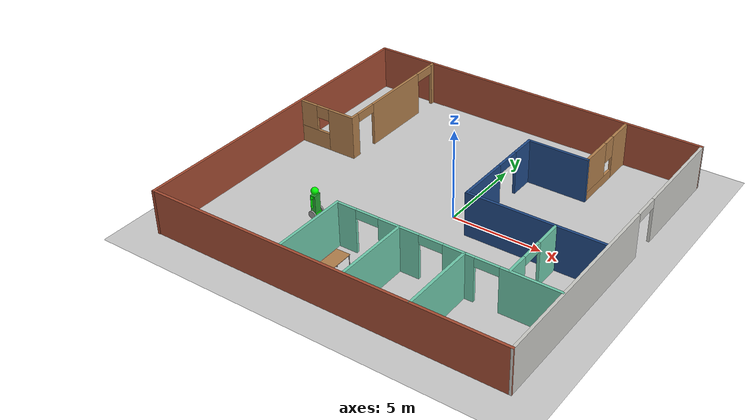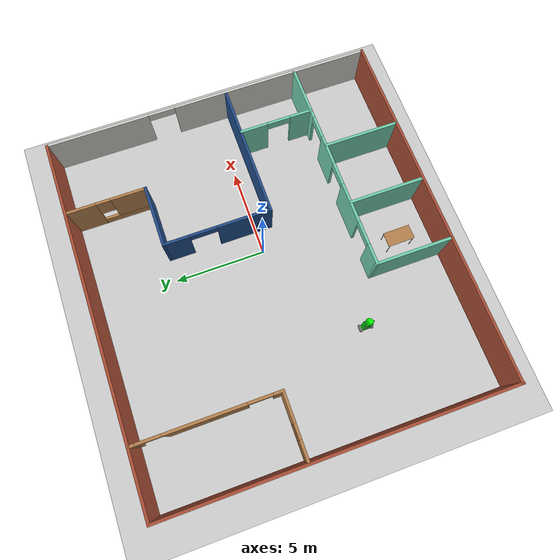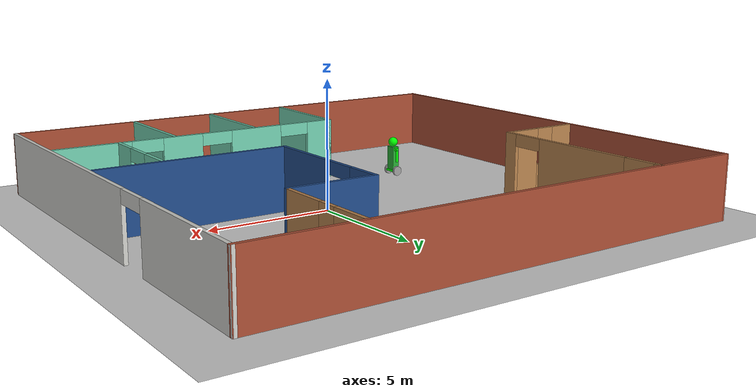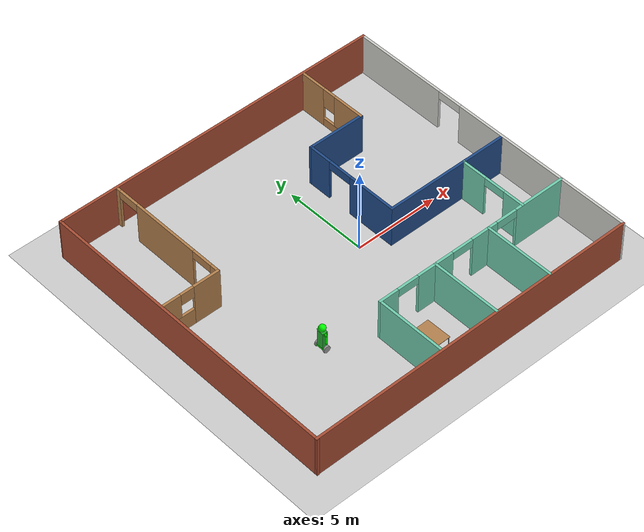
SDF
<sdf version="1.6">
 <world name="default">
  <model name="ground_plane">
   <static>1</static>
   <link name="link">
    <collision name="collision">
     <geometry><plane><normal>0 0 1</normal><size>100 100</size></plane></geometry>
     <surface>
      <contact><collide_bitmask>65535</collide_bitmask></contact>
      <friction><ode><mu>100</mu><mu2>50</mu2></ode></friction>
     </surface>
    </collision>
    <visual name="visual">
     <cast_shadows>0</cast_shadows>
     <geometry><plane><normal>0 0 1</normal><size>100 100</size></plane></geometry>
     <material>
      <script><uri>file://media/materials/scripts/gazebo.material</uri><name>Gazebo/Grey</name></script>
     </material>
    </visual>
   </link>
  </model>
  <model name="office">
   <pose>-1.09853 0.0618 0 0 -0 0</pose>
   <link name="Wall_100">
    <pose>3.87328 -5.05004 0 0 -0 0</pose>
    <visual name="Wall_100_Visual_0">
     <pose>-5.5246 0 1.25 0 -0 0</pose>
     <geometry><box><size>1.2008 0.15 2.5</size></box></geometry>
     <material>
      <script><uri>file://media/materials/scripts/gazebo.material</uri><name>Gazebo/Grey</name></script>
      <ambient>0.435294 0.796078 0.67451 1</ambient>
     </material>
     <meta><layer>0</layer></meta>
    </visual>
    <collision name="Wall_100_Collision_0">
     <geometry><box><size>1.2008 0.15 2.5</size></box></geometry>
     <pose>-5.5246 0 1.25 0 -0 0</pose>
    </collision>
    <visual name="Wall_100_Visual_1">
     <pose>-2.48178 0 1.25 0 -0 0</pose>
     <geometry><box><size>2.28483 0.15 2.5</size></box></geometry>
     <material>
      <script><uri>file://media/materials/scripts/gazebo.material</uri><name>Gazebo/Grey</name></script>
      <ambient>0.435294 0.796078 0.67451 1</ambient>
     </material>
     <meta><layer>0</layer></meta>
    </visual>
    <collision name="Wall_100_Collision_1">
     <geometry><box><size>2.28483 0.15 2.5</size></box></geometry>
     <pose>-2.48178 0 1.25 0 -0 0</pose>
    </collision>
    <visual name="Wall_100_Visual_2">
     <pose>0.798914 0 1.25 0 -0 0</pose>
     <geometry><box><size>1.67657 0.15 2.5</size></box></geometry>
     <material>
      <script><uri>file://media/materials/scripts/gazebo.material</uri><name>Gazebo/Grey</name></script>
      <ambient>0.435294 0.796078 0.67451 1</ambient>
     </material>
     <meta><layer>0</layer></meta>
    </visual>
    <collision name="Wall_100_Collision_2">
     <geometry><box><size>1.67657 0.15 2.5</size></box></geometry>
     <pose>0.798914 0 1.25 0 -0 0</pose>
    </collision>
    <visual name="Wall_100_Visual_3">
     <pose>4.5311 0 1.25 0 -0 0</pose>
     <geometry><box><size>3.1878 0.15 2.5</size></box></geometry>
     <material>
      <script><uri>file://media/materials/scripts/gazebo.material</uri><name>Gazebo/Grey</name></script>
      <ambient>0.435294 0.796078 0.67451 1</ambient>
     </material>
     <meta><layer>0</layer></meta>
    </visual>
    <collision name="Wall_100_Collision_3">
     <geometry><box><size>3.1878 0.15 2.5</size></box></geometry>
     <pose>4.5311 0 1.25 0 -0 0</pose>
    </collision>
    <visual name="Wall_100_Visual_4">
     <pose>-4.2742 0 2.25 0 -0 0</pose>
     <geometry><box><size>1.3 0.15 0.5</size></box></geometry>
     <material>
      <script><uri>file://media/materials/scripts/gazebo.material</uri><name>Gazebo/Grey</name></script>
      <ambient>0.435294 0.796078 0.67451 1</ambient>
     </material>
     <meta><layer>0</layer></meta>
    </visual>
    <collision name="Wall_100_Collision_4">
     <geometry><box><size>1.3 0.15 0.5</size></box></geometry>
     <pose>-4.2742 0 2.25 0 -0 0</pose>
    </collision>
    <visual name="Wall_100_Visual_5">
     <pose>-0.689371 0 2.25 0 -0 0</pose>
     <geometry><box><size>1.3 0.15 0.5</size></box></geometry>
     <material>
      <script><uri>file://media/materials/scripts/gazebo.material</uri><name>Gazebo/Grey</name></script>
      <ambient>0.435294 0.796078 0.67451 1</ambient>
     </material>
     <meta><layer>0</layer></meta>
    </visual>
    <collision name="Wall_100_Collision_5">
     <geometry><box><size>1.3 0.15 0.5</size></box></geometry>
     <pose>-0.689371 0 2.25 0 -0 0</pose>
    </collision>
    <visual name="Wall_100_Visual_6">
     <pose>2.2872 0 2.25 0 -0 0</pose>
     <geometry><box><size>1.3 0.15 0.5</size></box></geometry>
     <material>
      <script><uri>file://media/materials/scripts/gazebo.material</uri><name>Gazebo/Grey</name></script>
      <ambient>0.435294 0.796078 0.67451 1</ambient>
     </material>
     <meta><layer>0</layer></meta>
    </visual>
    <collision name="Wall_100_Collision_6">
     <geometry><box><size>1.3 0.15 0.5</size></box></geometry>
     <pose>2.2872 0 2.25 0 -0 0</pose>
    </collision>
   </link>
   <link name="Wall_102">
    <collision name="Wall_102_Collision">
     <geometry><box><size>20.1151 0.15 2.5</size></box></geometry>
     <pose>0 0 1.25 0 -0 0</pose>
    </collision>
    <visual name="Wall_102_Visual">
     <pose>0 0 1.25 0 -0 0</pose>
     <geometry><box><size>20.1151 0.15 2.5</size></box></geometry>
     <material>
      <script><uri>file://media/materials/scripts/gazebo.material</uri><name>Gazebo/Bricks</name></script>
      <ambient>1 1 1 1</ambient>
     </material>
     <meta><layer>0</layer></meta>
    </visual>
    <pose>0.012485 9.2376 0 0 -0 0.003515</pose>
   </link>
   <link name="Wall_31">
    <collision name="Wall_31_Collision">
     <geometry><box><size>20.1151 0.15 2.5</size></box></geometry>
     <pose>0 0 1.25 0 -0 0</pose>
    </collision>
    <visual name="Wall_31_Visual">
     <pose>0 0 1.25 0 -0 0</pose>
     <geometry><box><size>20.1151 0.15 2.5</size></box></geometry>
     <material>
      <script><uri>file://media/materials/scripts/gazebo.material</uri><name>Gazebo/Bricks</name></script>
      <ambient>1 1 1 1</ambient>
     </material>
     <meta><layer>0</layer></meta>
    </visual>
    <pose>-0.012543 -9.22507 0 0 -0 0.00228</pose>
   </link>
   <link name="Wall_32">
    <pose>9.9825 0.035189 0 0 -0 1.56944</pose>
    <visual name="Wall_32_Visual_0">
     <pose>-3.6506 0 1.25 0 -0 0</pose>
     <geometry><box><size>11.3242 0.15 2.5</size></box></geometry>
     <material>
      <script><uri>file://media/materials/scripts/gazebo.material</uri><name>Gazebo/CeilingTiled</name></script>
      <ambient>1 1 1 1</ambient>
     </material>
     <meta><layer>0</layer></meta>
    </visual>
    <collision name="Wall_32_Collision_0">
     <geometry><box><size>11.3242 0.15 2.5</size></box></geometry>
     <pose>-3.6506 0 1.25 0 -0 0</pose>
    </collision>
    <visual name="Wall_32_Visual_1">
     <pose>6.41211 0 1.25 0 -0 0</pose>
     <geometry><box><size>5.8012 0.15 2.5</size></box></geometry>
     <material>
      <script><uri>file://media/materials/scripts/gazebo.material</uri><name>Gazebo/CeilingTiled</name></script>
      <ambient>1 1 1 1</ambient>
     </material>
     <meta><layer>0</layer></meta>
    </visual>
    <collision name="Wall_32_Collision_1">
     <geometry><box><size>5.8012 0.15 2.5</size></box></geometry>
     <pose>6.41211 0 1.25 0 -0 0</pose>
    </collision>
    <visual name="Wall_32_Visual_2">
     <pose>2.76151 0 2.25 0 -0 0</pose>
     <geometry><box><size>1.5 0.15 0.5</size></box></geometry>
     <material>
      <script><uri>file://media/materials/scripts/gazebo.material</uri><name>Gazebo/CeilingTiled</name></script>
      <ambient>1 1 1 1</ambient>
     </material>
     <meta><layer>0</layer></meta>
    </visual>
    <collision name="Wall_32_Collision_2">
     <geometry><box><size>1.5 0.15 0.5</size></box></geometry>
     <pose>2.76151 0 2.25 0 -0 0</pose>
    </collision>
   </link>
   <link name="Wall_34">
    <pose>5.77997 7.07751 0 0 -0 -1.5708</pose>
    <visual name="Wall_34_Visual_0">
     <pose>-1.39732 0 1.25 0 -0 0</pose>
     <geometry><box><size>1.70536 0.15 2.5</size></box></geometry>
     <material>
      <script><uri>file://media/materials/scripts/gazebo.material</uri><name>Gazebo/Wood</name></script>
      <ambient>0.12549 0.290196 0.529412 1</ambient>
     </material>
     <meta><layer>0</layer></meta>
    </visual>
    <collision name="Wall_34_Collision_0">
     <geometry><box><size>1.70536 0.15 2.5</size></box></geometry>
     <pose>-1.39732 0 1.25 0 -0 0</pose>
    </collision>
    <visual name="Wall_34_Visual_1">
     <pose>0.852681 0 0.25 0 -0 0</pose>
     <geometry><box><size>2.79464 0.15 0.5</size></box></geometry>
     <material>
      <script><uri>file://media/materials/scripts/gazebo.material</uri><name>Gazebo/Wood</name></script>
      <ambient>0.12549 0.290196 0.529412 1</ambient>
     </material>
     <meta><layer>0</layer></meta>
    </visual>
    <collision name="Wall_34_Collision_1">
     <geometry><box><size>2.79464 0.15 0.5</size></box></geometry>
     <pose>0.852681 0 0.25 0 -0 0</pose>
    </collision>
    <visual name="Wall_34_Visual_2">
     <pose>1.25268 0 1.5 0 -0 0</pose>
     <geometry><box><size>1.99464 0.15 2</size></box></geometry>
     <material>
      <script><uri>file://media/materials/scripts/gazebo.material</uri><name>Gazebo/Wood</name></script>
      <ambient>0.12549 0.290196 0.529412 1</ambient>
     </material>
     <meta><layer>0</layer></meta>
    </visual>
    <collision name="Wall_34_Collision_2">
     <geometry><box><size>1.99464 0.15 2</size></box></geometry>
     <pose>1.25268 0 1.5 0 -0 0</pose>
    </collision>
    <visual name="Wall_34_Visual_3">
     <pose>-0.144637 0 1.9 0 -0 0</pose>
     <geometry><box><size>0.8 0.15 1.2</size></box></geometry>
     <material>
      <script><uri>file://media/materials/scripts/gazebo.material</uri><name>Gazebo/Wood</name></script>
      <ambient>0.12549 0.290196 0.529412 1</ambient>
     </material>
     <meta><layer>0</layer></meta>
    </visual>
    <collision name="Wall_34_Collision_3">
     <geometry><box><size>0.8 0.15 1.2</size></box></geometry>
     <pose>-0.144637 0 1.9 0 -0 0</pose>
    </collision>
   </link>
   <link name="Wall_35">
    <collision name="Wall_35_Collision">
     <geometry><box><size>3.5 0.15 2.5</size></box></geometry>
     <pose>0 0 1.25 0 -0 0</pose>
    </collision>
    <visual name="Wall_35_Visual">
     <pose>0 0 1.25 0 -0 0</pose>
     <geometry><box><size>3.5 0.15 2.5</size></box></geometry>
     <material>
      <script><uri>file://media/materials/scripts/gazebo.material</uri><name>Gazebo/Grey</name></script>
      <ambient>0.12549 0.290196 0.529412 1</ambient>
     </material>
     <meta><layer>0</layer></meta>
    </visual>
    <pose>4.10497 4.90251 0 0 -0 3.14159</pose>
   </link>
   <link name="Wall_40">
    <pose>2.42997 1.97751 0 0 -0 -1.5708</pose>
    <visual name="Wall_40_Visual_0">
     <pose>-2.25699 0 1.25 0 -0 0</pose>
     <geometry><box><size>1.48601 0.15 2.5</size></box></geometry>
     <material>
      <script><uri>file://media/materials/scripts/gazebo.material</uri><name>Gazebo/Grey</name></script>
      <ambient>0.12549 0.290196 0.529412 1</ambient>
     </material>
     <meta><layer>0</layer></meta>
    </visual>
    <collision name="Wall_40_Collision_0">
     <geometry><box><size>1.48601 0.15 2.5</size></box></geometry>
     <pose>-2.25699 0 1.25 0 -0 0</pose>
    </collision>
    <visual name="Wall_40_Visual_1">
     <pose>1.493 0 1.25 0 -0 0</pose>
     <geometry><box><size>3.01399 0.15 2.5</size></box></geometry>
     <material>
      <script><uri>file://media/materials/scripts/gazebo.material</uri><name>Gazebo/Grey</name></script>
      <ambient>0.12549 0.290196 0.529412 1</ambient>
     </material>
     <meta><layer>0</layer></meta>
    </visual>
    <collision name="Wall_40_Collision_1">
     <geometry><box><size>3.01399 0.15 2.5</size></box></geometry>
     <pose>1.493 0 1.25 0 -0 0</pose>
    </collision>
    <visual name="Wall_40_Visual_2">
     <pose>-0.76399 0 2.25 0 -0 0</pose>
     <geometry><box><size>1.5 0.15 0.5</size></box></geometry>
     <material>
      <script><uri>file://media/materials/scripts/gazebo.material</uri><name>Gazebo/Grey</name></script>
      <ambient>0.12549 0.290196 0.529412 1</ambient>
     </material>
     <meta><layer>0</layer></meta>
    </visual>
    <collision name="Wall_40_Collision_2">
     <geometry><box><size>1.5 0.15 0.5</size></box></geometry>
     <pose>-0.76399 0 2.25 0 -0 0</pose>
    </collision>
   </link>
   <link name="Wall_43">
    <collision name="Wall_43_Collision">
     <geometry><box><size>18.6254 0.15 2.5</size></box></geometry>
     <pose>0 0 1.25 0 -0 0</pose>
    </collision>
    <visual name="Wall_43_Visual">
     <pose>0 0 1.25 0 -0 0</pose>
     <geometry><box><size>18.6254 0.15 2.5</size></box></geometry>
     <material>
      <script><uri>file://media/materials/scripts/gazebo.material</uri><name>Gazebo/Bricks</name></script>
      <ambient>1 1 1 1</ambient>
     </material>
     <meta><layer>0</layer></meta>
    </visual>
    <pose>-9.98256 -0.035189 0 0 -0 1.56944</pose>
   </link>
   <link name="Wall_58">
    <collision name="Wall_58_Collision">
     <geometry><box><size>7.55 0.15 2.5</size></box></geometry>
     <pose>0 0 1.25 0 -0 0</pose>
    </collision>
    <visual name="Wall_58_Visual">
     <pose>0 0 1.25 0 -0 0</pose>
     <geometry><box><size>7.55 0.15 2.5</size></box></geometry>
     <material>
      <script><uri>file://media/materials/scripts/gazebo.material</uri><name>Gazebo/Grey</name></script>
      <ambient>0.12549 0.290196 0.529412 1</ambient>
     </material>
     <meta><layer>0</layer></meta>
    </visual>
    <pose>6.12997 -0.947492 0 0 -0 0</pose>
   </link>
   <link name="Wall_83">
    <pose>-6.499 5.40169 0 0 -0 -1.5708</pose>
    <visual name="Wall_83_Visual_0">
     <pose>-3.68643 0 1.25 0 -0 0</pose>
     <geometry><box><size>0.377131 0.15 2.5</size></box></geometry>
     <material>
      <script><uri>file://media/materials/scripts/gazebo.material</uri><name>Gazebo/Wood</name></script>
      <ambient>0.996078 0.47451 0.0196078 1</ambient>
     </material>
     <meta><layer>0</layer></meta>
    </visual>
    <collision name="Wall_83_Collision_0">
     <geometry><box><size>0.377131 0.15 2.5</size></box></geometry>
     <pose>-3.68643 0 1.25 0 -0 0</pose>
    </collision>
    <visual name="Wall_83_Visual_1">
     <pose>-0.095603 0 1.25 0 -0 0</pose>
     <geometry><box><size>4.20453 0.15 2.5</size></box></geometry>
     <material>
      <script><uri>file://media/materials/scripts/gazebo.material</uri><name>Gazebo/Wood</name></script>
      <ambient>0.996078 0.47451 0.0196078 1</ambient>
     </material>
     <meta><layer>0</layer></meta>
    </visual>
    <collision name="Wall_83_Collision_1">
     <geometry><box><size>4.20453 0.15 2.5</size></box></geometry>
     <pose>-0.095603 0 1.25 0 -0 0</pose>
    </collision>
    <visual name="Wall_83_Visual_2">
     <pose>3.59083 0 1.25 0 -0 0</pose>
     <geometry><box><size>0.568336 0.15 2.5</size></box></geometry>
     <material>
      <script><uri>file://media/materials/scripts/gazebo.material</uri><name>Gazebo/Wood</name></script>
      <ambient>0.996078 0.47451 0.0196078 1</ambient>
     </material>
     <meta><layer>0</layer></meta>
    </visual>
    <collision name="Wall_83_Collision_2">
     <geometry><box><size>0.568336 0.15 2.5</size></box></geometry>
     <pose>3.59083 0 1.25 0 -0 0</pose>
    </collision>
    <visual name="Wall_83_Visual_3">
     <pose>-2.84787 0 2.25 0 -0 0</pose>
     <geometry><box><size>1.3 0.15 0.5</size></box></geometry>
     <material>
      <script><uri>file://media/materials/scripts/gazebo.material</uri><name>Gazebo/Wood</name></script>
      <ambient>0.996078 0.47451 0.0196078 1</ambient>
     </material>
     <meta><layer>0</layer></meta>
    </visual>
    <collision name="Wall_83_Collision_3">
     <geometry><box><size>1.3 0.15 0.5</size></box></geometry>
     <pose>-2.84787 0 2.25 0 -0 0</pose>
    </collision>
    <visual name="Wall_83_Visual_4">
     <pose>2.65666 0 2.25 0 -0 0</pose>
     <geometry><box><size>1.3 0.15 0.5</size></box></geometry>
     <material>
      <script><uri>file://media/materials/scripts/gazebo.material</uri><name>Gazebo/Wood</name></script>
      <ambient>0.996078 0.47451 0.0196078 1</ambient>
     </material>
     <meta><layer>0</layer></meta>
    </visual>
    <collision name="Wall_83_Collision_4">
     <geometry><box><size>1.3 0.15 0.5</size></box></geometry>
     <pose>2.65666 0 2.25 0 -0 0</pose>
    </collision>
   </link>
   <link name="Wall_84">
    <pose>-8.17411 1.60163 0 0 -0 -3.14156</pose>
    <visual name="Wall_84_Visual_0">
     <pose>-0.938412 0 1.25 0 -0 0</pose>
     <geometry><box><size>1.62318 0.15 2.5</size></box></geometry>
     <material>
      <script><uri>file://media/materials/scripts/gazebo.material</uri><name>Gazebo/Wood</name></script>
      <ambient>0.996078 0.47451 0.0196078 1</ambient>
     </material>
     <meta><layer>0</layer></meta>
    </visual>
    <collision name="Wall_84_Collision_0">
     <geometry><box><size>1.62318 0.15 2.5</size></box></geometry>
     <pose>-0.938412 0 1.25 0 -0 0</pose>
    </collision>
    <visual name="Wall_84_Visual_1">
     <pose>0.811588 0 0.5 0 -0 0</pose>
     <geometry><box><size>1.87682 0.15 1</size></box></geometry>
     <material>
      <script><uri>file://media/materials/scripts/gazebo.material</uri><name>Gazebo/Wood</name></script>
      <ambient>0.996078 0.47451 0.0196078 1</ambient>
     </material>
     <meta><layer>0</layer></meta>
    </visual>
    <collision name="Wall_84_Collision_1">
     <geometry><box><size>1.87682 0.15 1</size></box></geometry>
     <pose>0.811588 0 0.5 0 -0 0</pose>
    </collision>
    <visual name="Wall_84_Visual_2">
     <pose>1.21159 0 1.75 0 -0 0</pose>
     <geometry><box><size>1.07682 0.15 1.5</size></box></geometry>
     <material>
      <script><uri>file://media/materials/scripts/gazebo.material</uri><name>Gazebo/Wood</name></script>
      <ambient>0.996078 0.47451 0.0196078 1</ambient>
     </material>
     <meta><layer>0</layer></meta>
    </visual>
    <collision name="Wall_84_Collision_2">
     <geometry><box><size>1.07682 0.15 1.5</size></box></geometry>
     <pose>1.21159 0 1.75 0 -0 0</pose>
    </collision>
    <visual name="Wall_84_Visual_3">
     <pose>0.273176 0 2.15 0 -0 0</pose>
     <geometry><box><size>0.8 0.15 0.7</size></box></geometry>
     <material>
      <script><uri>file://media/materials/scripts/gazebo.material</uri><name>Gazebo/Wood</name></script>
      <ambient>0.996078 0.47451 0.0196078 1</ambient>
     </material>
     <meta><layer>0</layer></meta>
    </visual>
    <collision name="Wall_84_Collision_3">
     <geometry><box><size>0.8 0.15 0.7</size></box></geometry>
     <pose>0.273176 0 2.15 0 -0 0</pose>
    </collision>
   </link>
   <link name="Wall_87">
    <pose>7.28385 -3.02299 0 0 -0 -1.5708</pose>
    <visual name="Wall_87_Visual_0">
     <pose>-1.31272 0 1.25 0 -0 0</pose>
     <geometry><box><size>1.57456 0.15 2.5</size></box></geometry>
     <material>
      <script><uri>file://media/materials/scripts/gazebo.material</uri><name>Gazebo/Grey</name></script>
      <ambient>0.435294 0.796078 0.67451 1</ambient>
     </material>
     <meta><layer>0</layer></meta>
    </visual>
    <collision name="Wall_87_Collision_0">
     <geometry><box><size>1.57456 0.15 2.5</size></box></geometry>
     <pose>-1.31272 0 1.25 0 -0 0</pose>
    </collision>
    <visual name="Wall_87_Visual_1">
     <pose>1.43728 0 1.25 0 -0 0</pose>
     <geometry><box><size>1.32543 0.15 2.5</size></box></geometry>
     <material>
      <script><uri>file://media/materials/scripts/gazebo.material</uri><name>Gazebo/Grey</name></script>
      <ambient>0.435294 0.796078 0.67451 1</ambient>
     </material>
     <meta><layer>0</layer></meta>
    </visual>
    <collision name="Wall_87_Collision_1">
     <geometry><box><size>1.32543 0.15 2.5</size></box></geometry>
     <pose>1.43728 0 1.25 0 -0 0</pose>
    </collision>
    <visual name="Wall_87_Visual_2">
     <pose>0.124565 0 2.25 0 -0 0</pose>
     <geometry><box><size>1.3 0.15 0.5</size></box></geometry>
     <material>
      <script><uri>file://media/materials/scripts/gazebo.material</uri><name>Gazebo/Grey</name></script>
      <ambient>0.435294 0.796078 0.67451 1</ambient>
     </material>
     <meta><layer>0</layer></meta>
    </visual>
    <collision name="Wall_87_Collision_2">
     <geometry><box><size>1.3 0.15 0.5</size></box></geometry>
     <pose>0.124565 0 2.25 0 -0 0</pose>
    </collision>
   </link>
   <link name="Wall_89">
    <collision name="Wall_89_Collision">
     <geometry><box><size>4.25 0.15 2.5</size></box></geometry>
     <pose>0 0 1.25 0 -0 0</pose>
    </collision>
    <visual name="Wall_89_Visual">
     <pose>0 0 1.25 0 -0 0</pose>
     <geometry><box><size>4.25 0.15 2.5</size></box></geometry>
     <material>
      <script><uri>file://media/materials/scripts/gazebo.material</uri><name>Gazebo/Grey</name></script>
      <ambient>0.435294 0.796078 0.67451 1</ambient>
     </material>
     <meta><layer>0</layer></meta>
    </visual>
    <pose>4.96424 -7.13054 0 0 -0 -1.5708</pose>
   </link>
   <link name="Wall_91">
    <collision name="Wall_91_Collision">
     <geometry><box><size>4.25 0.15 2.5</size></box></geometry>
     <pose>0 0 1.25 0 -0 0</pose>
    </collision>
    <visual name="Wall_91_Visual">
     <pose>0 0 1.25 0 -0 0</pose>
     <geometry><box><size>4.25 0.15 2.5</size></box></geometry>
     <material>
      <script><uri>file://media/materials/scripts/gazebo.material</uri><name>Gazebo/Grey</name></script>
      <ambient>0.435294 0.796078 0.67451 1</ambient>
     </material>
     <meta><layer>0</layer></meta>
    </visual>
    <pose>1.40966 -7.1075 0 0 -0 -1.5708</pose>
   </link>
   <link name="Wall_93">
    <collision name="Wall_93_Collision">
     <geometry><box><size>4.25 0.15 2.5</size></box></geometry>
     <pose>0 0 1.25 0 -0 0</pose>
    </collision>
    <visual name="Wall_93_Visual">
     <pose>0 0 1.25 0 -0 0</pose>
     <geometry><box><size>4.25 0.15 2.5</size></box></geometry>
     <material>
      <script><uri>file://media/materials/scripts/gazebo.material</uri><name>Gazebo/Grey</name></script>
      <ambient>0.435294 0.796078 0.67451 1</ambient>
     </material>
     <meta><layer>0</layer></meta>
    </visual>
    <pose>-2.17672 -7.10004 0 0 -0 -1.5708</pose>
   </link>
   <static>1</static>
  </model>
  <model name="humanoid_robot_clone_0">
   <link name="link_0">
    <pose>0 0 -0.1375 0 -0 0</pose>
    <inertial>
     <mass>10</mass>
     <inertia>
      <ixx>0.216667</ixx>
      <ixy>0</ixy>
      <ixz>0</ixz>
      <iyy>0.0833333</iyy>
      <iyz>0</iyz>
      <izz>0.283333</izz>
     </inertia>
    </inertial>
    <visual name="visual">
     <geometry><box><size>0.3 0.5 0.1</size></box></geometry>
     <material>
      <lighting>1</lighting>
      <script><uri>file://media/materials/scripts/gazebo.material</uri><name>Gazebo/Grey</name></script>
      <shader type="pixel"><normal_map>__default__</normal_map></shader>
      <ambient>0 1 0 1</ambient>
      <diffuse>0.7 0.7 0.7 1</diffuse>
      <specular>0.01 0.01 0.01 1</specular>
      <emissive>0 0 0 1</emissive>
     </material>
    </visual>
    <collision name="collision">
     <geometry><box><size>0.3 0.5 0.1</size></box></geometry>
     <surface>
      <friction>
       <ode><mu>1</mu><mu2>1</mu2><fdir1>0 0 0</fdir1><slip1>0</slip1><slip2>0</slip2></ode>
       <torsional>
        <coefficient>1</coefficient>
        <patch_radius>0</patch_radius>
        <surface_radius>0</surface_radius>
        <use_patch_radius>1</use_patch_radius>
        <ode><slip>0</slip></ode>
       </torsional>
      </friction>
      <bounce><restitution_coefficient>0</restitution_coefficient><threshold>1e+06</threshold></bounce>
      <contact>
       <collide_without_contact>0</collide_without_contact>
       <collide_without_contact_bitmask>1</collide_without_contact_bitmask>
       <collide_bitmask>1</collide_bitmask>
       <ode>
        <soft_cfm>0</soft_cfm>
        <soft_erp>0.2</soft_erp>
        <kp>1e+13</kp>
        <kd>1</kd>
        <max_vel>0.01</max_vel>
        <min_depth>0</min_depth>
       </ode>
       <bullet>
        <split_impulse>1</split_impulse>
        <split_impulse_penetration_threshold>-0.01</split_impulse_penetration_threshold>
        <soft_cfm>0</soft_cfm>
        <soft_erp>0.2</soft_erp>
        <kp>1e+13</kp>
        <kd>1</kd>
       </bullet>
      </contact>
     </surface>
    </collision>
   </link>
   <link name="link_0_0">
    <pose>0 0 1.1125 0 -0 0</pose>
    <inertial>
     <mass>0.25</mass>
     <inertia><ixx>0.1</ixx><ixy>0</ixy><ixz>0</ixz><iyy>0.1</iyy><iyz>0</iyz><izz>0.1</izz></inertia>
    </inertial>
    <visual name="visual">
     <geometry><sphere><radius>0.2</radius></sphere></geometry>
     <material>
      <lighting>1</lighting>
      <script><uri>file://media/materials/scripts/gazebo.material</uri><name>Gazebo/Grey</name></script>
      <shader type="pixel"><normal_map>__default__</normal_map></shader>
      <ambient>0 1 0 1</ambient>
      <diffuse>0.7 0.7 0.7 1</diffuse>
      <specular>0.01 0.01 0.01 1</specular>
      <emissive>0 0 0 1</emissive>
     </material>
    </visual>
    <collision name="collision">
     <geometry><sphere><radius>0.2</radius></sphere></geometry>
     <surface>
      <friction>
       <ode><mu>1</mu><mu2>1</mu2><fdir1>0 0 0</fdir1><slip1>0</slip1><slip2>0</slip2></ode>
       <torsional>
        <coefficient>1</coefficient>
        <patch_radius>0</patch_radius>
        <surface_radius>0</surface_radius>
        <use_patch_radius>1</use_patch_radius>
        <ode><slip>0</slip></ode>
       </torsional>
      </friction>
      <bounce><restitution_coefficient>0</restitution_coefficient><threshold>1e+06</threshold></bounce>
      <contact>
       <collide_without_contact>0</collide_without_contact>
       <collide_without_contact_bitmask>1</collide_without_contact_bitmask>
       <collide_bitmask>1</collide_bitmask>
       <ode>
        <soft_cfm>0</soft_cfm>
        <soft_erp>0.2</soft_erp>
        <kp>1e+13</kp>
        <kd>1</kd>
        <max_vel>0.01</max_vel>
        <min_depth>0</min_depth>
       </ode>
       <bullet>
        <split_impulse>1</split_impulse>
        <split_impulse_penetration_threshold>-0.01</split_impulse_penetration_threshold>
        <soft_cfm>0</soft_cfm>
        <soft_erp>0.2</soft_erp>
        <kp>1e+13</kp>
        <kd>1</kd>
       </bullet>
      </contact>
     </surface>
    </collision>
   </link>
   <link name="link_1">
    <pose>0 -0.300019 -0.137182 1.5707 -0 0</pose>
    <inertial>
     <mass>1</mass>
     <inertia><ixx>0.145833</ixx><ixy>0</ixy><ixz>0</ixz><iyy>0.145833</iyy><iyz>0</iyz><izz>0.125</izz></inertia>
    </inertial>
    <visual name="visual">
     <geometry><cylinder><radius>0.2</radius><length>0.1</length></cylinder></geometry>
     <material>
      <lighting>1</lighting>
      <script><uri>file://media/materials/scripts/gazebo.material</uri><name>Gazebo/Grey</name></script>
      <shader type="pixel"><normal_map>__default__</normal_map></shader>
      <ambient>1 1 1 1</ambient>
      <diffuse>0.7 0.7 0.7 1</diffuse>
      <specular>0.01 0.01 0.01 1</specular>
      <emissive>0 0 0 1</emissive>
     </material>
    </visual>
    <collision name="collision">
     <geometry><cylinder><radius>0.2</radius><length>0.1</length></cylinder></geometry>
     <surface>
      <friction>
       <ode><mu>1</mu><mu2>1</mu2><fdir1>0 0 0</fdir1><slip1>0</slip1><slip2>0</slip2></ode>
       <torsional>
        <coefficient>1</coefficient>
        <patch_radius>0</patch_radius>
        <surface_radius>0</surface_radius>
        <use_patch_radius>1</use_patch_radius>
        <ode><slip>0</slip></ode>
       </torsional>
      </friction>
      <bounce><restitution_coefficient>0</restitution_coefficient><threshold>1e+06</threshold></bounce>
      <contact>
       <collide_without_contact>0</collide_without_contact>
       <collide_without_contact_bitmask>1</collide_without_contact_bitmask>
       <collide_bitmask>1</collide_bitmask>
       <ode>
        <soft_cfm>0</soft_cfm>
        <soft_erp>0.2</soft_erp>
        <kp>1e+13</kp>
        <kd>1</kd>
        <max_vel>0.01</max_vel>
        <min_depth>0</min_depth>
       </ode>
       <bullet>
        <split_impulse>1</split_impulse>
        <split_impulse_penetration_threshold>-0.01</split_impulse_penetration_threshold>
        <soft_cfm>0</soft_cfm>
        <soft_erp>0.2</soft_erp>
        <kp>1e+13</kp>
        <kd>1</kd>
       </bullet>
      </contact>
     </surface>
    </collision>
   </link>
   <link name="link_1_0">
    <pose>0 -0.275033 0.812507 1.5707 -0 0</pose>
    <inertial>
     <mass>0.1</mass>
     <inertia><ixx>0.145833</ixx><ixy>0</ixy><ixz>0</ixz><iyy>0.145833</iyy><iyz>0</iyz><izz>0.125</izz></inertia>
    </inertial>
    <visual name="visual">
     <geometry><cylinder><radius>0.05</radius><length>0.1</length></cylinder></geometry>
     <material>
      <lighting>1</lighting>
      <script><uri>file://media/materials/scripts/gazebo.material</uri><name>Gazebo/Grey</name></script>
      <shader type="pixel"><normal_map>__default__</normal_map></shader>
      <ambient>0 1 0 1</ambient>
      <diffuse>0.7 0.7 0.7 1</diffuse>
      <specular>0.01 0.01 0.01 1</specular>
      <emissive>0 0 0 1</emissive>
     </material>
    </visual>
    <collision name="collision">
     <geometry><cylinder><radius>0.05</radius><length>0.1</length></cylinder></geometry>
     <surface>
      <friction>
       <ode><mu>1</mu><mu2>1</mu2><fdir1>0 0 0</fdir1><slip1>0</slip1><slip2>0</slip2></ode>
       <torsional>
        <coefficient>1</coefficient>
        <patch_radius>0</patch_radius>
        <surface_radius>0</surface_radius>
        <use_patch_radius>1</use_patch_radius>
        <ode><slip>0</slip></ode>
       </torsional>
      </friction>
      <bounce><restitution_coefficient>0</restitution_coefficient><threshold>1e+06</threshold></bounce>
      <contact>
       <collide_without_contact>0</collide_without_contact>
       <collide_without_contact_bitmask>1</collide_without_contact_bitmask>
       <collide_bitmask>1</collide_bitmask>
       <ode>
        <soft_cfm>0</soft_cfm>
        <soft_erp>0.2</soft_erp>
        <kp>1e+13</kp>
        <kd>1</kd>
        <max_vel>0.01</max_vel>
        <min_depth>0</min_depth>
       </ode>
       <bullet>
        <split_impulse>1</split_impulse>
        <split_impulse_penetration_threshold>-0.01</split_impulse_penetration_threshold>
        <soft_cfm>0</soft_cfm>
        <soft_erp>0.2</soft_erp>
        <kp>1e+13</kp>
        <kd>1</kd>
       </bullet>
      </contact>
     </surface>
    </collision>
   </link>
   <link name="link_1_0_clone">
    <pose>0 0.275024 0.812479 1.5707 -0 0</pose>
    <inertial>
     <mass>0.1</mass>
     <inertia><ixx>0.145833</ixx><ixy>0</ixy><ixz>0</ixz><iyy>0.145833</iyy><iyz>0</iyz><izz>0.125</izz></inertia>
    </inertial>
    <visual name="visual_0">
     <geometry><cylinder><radius>0.05</radius><length>0.1</length></cylinder></geometry>
     <material>
      <lighting>1</lighting>
      <script><uri>file://media/materials/scripts/gazebo.material</uri><name>Gazebo/Grey</name></script>
      <shader type="pixel"><normal_map>__default__</normal_map></shader>
      <ambient>0 1 0 1</ambient>
      <diffuse>0.7 0.7 0.7 1</diffuse>
      <specular>0.01 0.01 0.01 1</specular>
      <emissive>0 0 0 1</emissive>
     </material>
    </visual>
    <collision name="collision">
     <geometry><cylinder><radius>0.05</radius><length>0.1</length></cylinder></geometry>
     <surface>
      <friction>
       <ode><mu>1</mu><mu2>1</mu2><fdir1>0 0 0</fdir1><slip1>0</slip1><slip2>0</slip2></ode>
       <torsional>
        <coefficient>1</coefficient>
        <patch_radius>0</patch_radius>
        <surface_radius>0</surface_radius>
        <use_patch_radius>1</use_patch_radius>
        <ode><slip>0</slip></ode>
       </torsional>
      </friction>
      <bounce><restitution_coefficient>0</restitution_coefficient><threshold>1e+06</threshold></bounce>
      <contact>
       <collide_without_contact>0</collide_without_contact>
       <collide_without_contact_bitmask>1</collide_without_contact_bitmask>
       <collide_bitmask>1</collide_bitmask>
       <ode>
        <soft_cfm>0</soft_cfm>
        <soft_erp>0.2</soft_erp>
        <kp>1e+13</kp>
        <kd>1</kd>
        <max_vel>0.01</max_vel>
        <min_depth>0</min_depth>
       </ode>
       <bullet>
        <split_impulse>1</split_impulse>
        <split_impulse_penetration_threshold>-0.01</split_impulse_penetration_threshold>
        <soft_cfm>0</soft_cfm>
        <soft_erp>0.2</soft_erp>
        <kp>1e+13</kp>
        <kd>1</kd>
       </bullet>
      </contact>
     </surface>
    </collision>
   </link>
   <link name="link_1_clone">
    <pose>0 0.300019 -0.137182 1.5707 -0 0</pose>
    <inertial>
     <mass>1</mass>
     <inertia><ixx>0.145833</ixx><ixy>0</ixy><ixz>0</ixz><iyy>0.145833</iyy><iyz>0</iyz><izz>0.125</izz></inertia>
    </inertial>
    <visual name="visual">
     <geometry><cylinder><radius>0.2</radius><length>0.1</length></cylinder></geometry>
     <material>
      <lighting>1</lighting>
      <script><uri>file://media/materials/scripts/gazebo.material</uri><name>Gazebo/Grey</name></script>
      <shader type="pixel"><normal_map>__default__</normal_map></shader>
      <ambient>1 1 1 1</ambient>
      <diffuse>0.7 0.7 0.7 1</diffuse>
      <specular>0.01 0.01 0.01 1</specular>
      <emissive>0 0 0 1</emissive>
     </material>
    </visual>
    <collision name="collision">
     <geometry><cylinder><radius>0.2</radius><length>0.1</length></cylinder></geometry>
     <surface>
      <friction>
       <ode><mu>1</mu><mu2>1</mu2><fdir1>0 0 0</fdir1><slip1>0</slip1><slip2>0</slip2></ode>
       <torsional>
        <coefficient>1</coefficient>
        <patch_radius>0</patch_radius>
        <surface_radius>0</surface_radius>
        <use_patch_radius>1</use_patch_radius>
        <ode><slip>0</slip></ode>
       </torsional>
      </friction>
      <bounce><restitution_coefficient>0</restitution_coefficient><threshold>1e+06</threshold></bounce>
      <contact>
       <collide_without_contact>0</collide_without_contact>
       <collide_without_contact_bitmask>1</collide_without_contact_bitmask>
       <collide_bitmask>1</collide_bitmask>
       <ode>
        <soft_cfm>0</soft_cfm>
        <soft_erp>0.2</soft_erp>
        <kp>1e+13</kp>
        <kd>1</kd>
        <max_vel>0.01</max_vel>
        <min_depth>0</min_depth>
       </ode>
       <bullet>
        <split_impulse>1</split_impulse>
        <split_impulse_penetration_threshold>-0.01</split_impulse_penetration_threshold>
        <soft_cfm>0</soft_cfm>
        <soft_erp>0.2</soft_erp>
        <kp>1e+13</kp>
        <kd>1</kd>
       </bullet>
      </contact>
     </surface>
    </collision>
   </link>
   <link name="link_1_clone_0">
    <pose>0 -0.21251 0.812499 1.5707 -0 0</pose>
    <inertial>
     <mass>1</mass>
     <inertia><ixx>0.145833</ixx><ixy>0</ixy><ixz>0</ixz><iyy>0.145833</iyy><iyz>0</iyz><izz>0.125</izz></inertia>
    </inertial>
    <visual name="visual">
     <geometry><cylinder><radius>0.1</radius><length>0.025</length></cylinder></geometry>
     <material>
      <lighting>1</lighting>
      <script><uri>file://media/materials/scripts/gazebo.material</uri><name>Gazebo/Grey</name></script>
      <shader type="pixel"><normal_map>__default__</normal_map></shader>
      <ambient>0 1 0 1</ambient>
      <diffuse>0.7 0.7 0.7 1</diffuse>
      <specular>0.01 0.01 0.01 1</specular>
      <emissive>0 0 0 1</emissive>
     </material>
    </visual>
    <collision name="collision">
     <geometry><cylinder><radius>0.1</radius><length>0.025</length></cylinder></geometry>
     <surface>
      <friction>
       <ode><mu>1</mu><mu2>1</mu2><fdir1>0 0 0</fdir1><slip1>0</slip1><slip2>0</slip2></ode>
       <torsional>
        <coefficient>1</coefficient>
        <patch_radius>0</patch_radius>
        <surface_radius>0</surface_radius>
        <use_patch_radius>1</use_patch_radius>
        <ode><slip>0</slip></ode>
       </torsional>
      </friction>
      <bounce><restitution_coefficient>0</restitution_coefficient><threshold>1e+06</threshold></bounce>
      <contact>
       <collide_without_contact>0</collide_without_contact>
       <collide_without_contact_bitmask>1</collide_without_contact_bitmask>
       <collide_bitmask>1</collide_bitmask>
       <ode>
        <soft_cfm>0</soft_cfm>
        <soft_erp>0.2</soft_erp>
        <kp>1e+13</kp>
        <kd>1</kd>
        <max_vel>0.01</max_vel>
        <min_depth>0</min_depth>
       </ode>
       <bullet>
        <split_impulse>1</split_impulse>
        <split_impulse_penetration_threshold>-0.01</split_impulse_penetration_threshold>
        <soft_cfm>0</soft_cfm>
        <soft_erp>0.2</soft_erp>
        <kp>1e+13</kp>
        <kd>1</kd>
       </bullet>
      </contact>
     </surface>
    </collision>
   </link>
   <link name="link_1_clone_0_clone">
    <pose>0 0.21251 0.812499 1.5707 -0 0</pose>
    <inertial>
     <mass>1</mass>
     <inertia><ixx>0.145833</ixx><ixy>0</ixy><ixz>0</ixz><iyy>0.145833</iyy><iyz>0</iyz><izz>0.125</izz></inertia>
    </inertial>
    <visual name="visual">
     <geometry><cylinder><radius>0.1</radius><length>0.025</length></cylinder></geometry>
     <material>
      <lighting>1</lighting>
      <script><uri>file://media/materials/scripts/gazebo.material</uri><name>Gazebo/Grey</name></script>
      <shader type="pixel"><normal_map>__default__</normal_map></shader>
      <ambient>0 1 0 1</ambient>
      <diffuse>0.7 0.7 0.7 1</diffuse>
      <specular>0.01 0.01 0.01 1</specular>
      <emissive>0 0 0 1</emissive>
     </material>
    </visual>
    <collision name="collision">
     <geometry><cylinder><radius>0.1</radius><length>0.025</length></cylinder></geometry>
     <surface>
      <friction>
       <ode><mu>1</mu><mu2>1</mu2><fdir1>0 0 0</fdir1><slip1>0</slip1><slip2>0</slip2></ode>
       <torsional>
        <coefficient>1</coefficient>
        <patch_radius>0</patch_radius>
        <surface_radius>0</surface_radius>
        <use_patch_radius>1</use_patch_radius>
        <ode><slip>0</slip></ode>
       </torsional>
      </friction>
      <bounce><restitution_coefficient>0</restitution_coefficient><threshold>1e+06</threshold></bounce>
      <contact>
       <collide_without_contact>0</collide_without_contact>
       <collide_without_contact_bitmask>1</collide_without_contact_bitmask>
       <collide_bitmask>1</collide_bitmask>
       <ode>
        <soft_cfm>0</soft_cfm>
        <soft_erp>0.2</soft_erp>
        <kp>1e+13</kp>
        <kd>1</kd>
        <max_vel>0.01</max_vel>
        <min_depth>0</min_depth>
       </ode>
       <bullet>
        <split_impulse>1</split_impulse>
        <split_impulse_penetration_threshold>-0.01</split_impulse_penetration_threshold>
        <soft_cfm>0</soft_cfm>
        <soft_erp>0.2</soft_erp>
        <kp>1e+13</kp>
        <kd>1</kd>
       </bullet>
      </contact>
     </surface>
    </collision>
   </link>
   <link name="link_3">
    <pose>0 0 0.4125 0 -0 0</pose>
    <inertial>
     <mass>1</mass>
     <inertia>
      <ixx>0.166667</ixx>
      <ixy>0</ixy>
      <ixz>0</ixz>
      <iyy>0.166667</iyy>
      <iyz>0</iyz>
      <izz>0.166667</izz>
     </inertia>
    </inertial>
    <visual name="visual">
     <geometry><box><size>0.3 0.4 1</size></box></geometry>
     <material>
      <lighting>1</lighting>
      <script><uri>file://media/materials/scripts/gazebo.material</uri><name>Gazebo/Green</name></script>
      <shader type="pixel"><normal_map>__default__</normal_map></shader>
      <ambient>0 1 0 1</ambient>
      <diffuse>0.7 0.7 0.7 1</diffuse>
      <specular>0.01 0.01 0.01 1</specular>
      <emissive>0 0 0 1</emissive>
     </material>
    </visual>
    <collision name="collision">
     <geometry><box><size>0.3 0.4 1</size></box></geometry>
     <surface>
      <friction>
       <ode><mu>1</mu><mu2>1</mu2><fdir1>0 0 0</fdir1><slip1>0</slip1><slip2>0</slip2></ode>
       <torsional>
        <coefficient>1</coefficient>
        <patch_radius>0</patch_radius>
        <surface_radius>0</surface_radius>
        <use_patch_radius>1</use_patch_radius>
        <ode><slip>0</slip></ode>
       </torsional>
      </friction>
      <bounce><restitution_coefficient>0</restitution_coefficient><threshold>1e+06</threshold></bounce>
      <contact>
       <collide_without_contact>0</collide_without_contact>
       <collide_without_contact_bitmask>1</collide_without_contact_bitmask>
       <collide_bitmask>1</collide_bitmask>
       <ode>
        <soft_cfm>0</soft_cfm>
        <soft_erp>0.2</soft_erp>
        <kp>1e+13</kp>
        <kd>1</kd>
        <max_vel>0.01</max_vel>
        <min_depth>0</min_depth>
       </ode>
       <bullet>
        <split_impulse>1</split_impulse>
        <split_impulse_penetration_threshold>-0.01</split_impulse_penetration_threshold>
        <soft_cfm>0</soft_cfm>
        <soft_erp>0.2</soft_erp>
        <kp>1e+13</kp>
        <kd>1</kd>
       </bullet>
      </contact>
     </surface>
    </collision>
   </link>
   <link name="link_3_0">
    <pose>0 -0.285062 0.512562 0 -0 0</pose>
    <inertial>
     <mass>0.5</mass>
     <inertia><ixx>0.145833</ixx><ixy>0</ixy><ixz>0</ixz><iyy>0.145833</iyy><iyz>0</iyz><izz>0.125</izz></inertia>
    </inertial>
    <visual name="visual">
     <geometry><cylinder><radius>0.05</radius><length>0.5</length></cylinder></geometry>
     <material>
      <lighting>1</lighting>
      <script><uri>file://media/materials/scripts/gazebo.material</uri><name>Gazebo/Grey</name></script>
      <shader type="pixel"><normal_map>__default__</normal_map></shader>
      <ambient>0 1 0 1</ambient>
      <diffuse>0.7 0.7 0.7 1</diffuse>
      <specular>0.01 0.01 0.01 1</specular>
      <emissive>0 0 0 1</emissive>
     </material>
    </visual>
    <collision name="collision">
     <geometry><cylinder><radius>0.05</radius><length>0.5</length></cylinder></geometry>
     <surface>
      <friction>
       <ode><mu>1</mu><mu2>1</mu2><fdir1>0 0 0</fdir1><slip1>0</slip1><slip2>0</slip2></ode>
       <torsional>
        <coefficient>1</coefficient>
        <patch_radius>0</patch_radius>
        <surface_radius>0</surface_radius>
        <use_patch_radius>1</use_patch_radius>
        <ode><slip>0</slip></ode>
       </torsional>
      </friction>
      <bounce><restitution_coefficient>0</restitution_coefficient><threshold>1e+06</threshold></bounce>
      <contact>
       <collide_without_contact>0</collide_without_contact>
       <collide_without_contact_bitmask>1</collide_without_contact_bitmask>
       <collide_bitmask>1</collide_bitmask>
       <ode>
        <soft_cfm>0</soft_cfm>
        <soft_erp>0.2</soft_erp>
        <kp>1e+13</kp>
        <kd>1</kd>
        <max_vel>0.01</max_vel>
        <min_depth>0</min_depth>
       </ode>
       <bullet>
        <split_impulse>1</split_impulse>
        <split_impulse_penetration_threshold>-0.01</split_impulse_penetration_threshold>
        <soft_cfm>0</soft_cfm>
        <soft_erp>0.2</soft_erp>
        <kp>1e+13</kp>
        <kd>1</kd>
       </bullet>
      </contact>
     </surface>
    </collision>
   </link>
   <link name="link_3_0_clone">
    <pose>0 0.284995 0.512478 0 -0 0</pose>
    <inertial>
     <mass>0.5</mass>
     <inertia><ixx>0.145833</ixx><ixy>0</ixy><ixz>0</ixz><iyy>0.145833</iyy><iyz>0</iyz><izz>0.125</izz></inertia>
    </inertial>
    <visual name="visual_0">
     <geometry><cylinder><radius>0.05</radius><length>0.5</length></cylinder></geometry>
     <material>
      <lighting>1</lighting>
      <script><uri>file://media/materials/scripts/gazebo.material</uri><name>Gazebo/Grey</name></script>
      <shader type="pixel"><normal_map>__default__</normal_map></shader>
      <ambient>0 1 0 1</ambient>
      <diffuse>0.7 0.7 0.7 1</diffuse>
      <specular>0.01 0.01 0.01 1</specular>
      <emissive>0 0 0 1</emissive>
     </material>
    </visual>
    <collision name="collision">
     <geometry><cylinder><radius>0.05</radius><length>0.5</length></cylinder></geometry>
     <surface>
      <friction>
       <ode><mu>1</mu><mu2>1</mu2><fdir1>0 0 0</fdir1><slip1>0</slip1><slip2>0</slip2></ode>
       <torsional>
        <coefficient>1</coefficient>
        <patch_radius>0</patch_radius>
        <surface_radius>0</surface_radius>
        <use_patch_radius>1</use_patch_radius>
        <ode><slip>0</slip></ode>
       </torsional>
      </friction>
      <bounce><restitution_coefficient>0</restitution_coefficient><threshold>1e+06</threshold></bounce>
      <contact>
       <collide_without_contact>0</collide_without_contact>
       <collide_without_contact_bitmask>1</collide_without_contact_bitmask>
       <collide_bitmask>1</collide_bitmask>
       <ode>
        <soft_cfm>0</soft_cfm>
        <soft_erp>0.2</soft_erp>
        <kp>1e+13</kp>
        <kd>1</kd>
        <max_vel>0.01</max_vel>
        <min_depth>0</min_depth>
       </ode>
       <bullet>
        <split_impulse>1</split_impulse>
        <split_impulse_penetration_threshold>-0.01</split_impulse_penetration_threshold>
        <soft_cfm>0</soft_cfm>
        <soft_erp>0.2</soft_erp>
        <kp>1e+13</kp>
        <kd>1</kd>
       </bullet>
      </contact>
     </surface>
    </collision>
   </link>
   <joint name="link_0_JOINT_2" type="fixed">
    <parent>link_0</parent>
    <child>link_3</child>
    <physics>
     <ode><limit><cfm>0</cfm><erp>0.2</erp></limit><suspension><cfm>0</cfm><erp>0.2</erp></suspension></ode>
    </physics>
   </joint>
   <joint name="link_0_JOINT_3" type="revolute">
    <parent>link_0</parent>
    <child>link_1</child>
    <axis>
     <xyz>0 0 -1</xyz>
     <use_parent_model_frame>0</use_parent_model_frame>
     <limit>
      <lower>-1.79769e+308</lower>
      <upper>1.79769e+308</upper>
      <effort>-1</effort>
      <velocity>-1</velocity>
     </limit>
     <dynamics>
      <spring_reference>0</spring_reference>
      <spring_stiffness>0</spring_stiffness>
      <damping>0</damping>
     </dynamics>
    </axis>
    <physics>
     <ode><limit><cfm>0</cfm><erp>0.2</erp></limit><suspension><cfm>0</cfm><erp>0.2</erp></suspension></ode>
    </physics>
   </joint>
   <joint name="link_0_JOINT_5" type="revolute">
    <parent>link_0</parent>
    <child>link_1_clone</child>
    <axis>
     <xyz>0 0 1</xyz>
     <use_parent_model_frame>0</use_parent_model_frame>
     <limit>
      <lower>-1.79769e+308</lower>
      <upper>1.79769e+308</upper>
      <effort>-1</effort>
      <velocity>-1</velocity>
     </limit>
     <dynamics>
      <spring_reference>0</spring_reference>
      <spring_stiffness>0</spring_stiffness>
      <damping>0</damping>
     </dynamics>
    </axis>
    <physics>
     <ode><limit><cfm>0</cfm><erp>0.2</erp></limit><suspension><cfm>0</cfm><erp>0.2</erp></suspension></ode>
    </physics>
   </joint>
   <joint name="link_1_0_JOINT_16" type="fixed">
    <parent>link_1_0</parent>
    <child>link_3_0</child>
    <physics>
     <ode><limit><cfm>0</cfm><erp>0.2</erp></limit><suspension><cfm>0</cfm><erp>0.2</erp></suspension></ode>
    </physics>
   </joint>
   <joint name="link_1_0_clone_JOINT_17" type="fixed">
    <parent>link_1_0_clone</parent>
    <child>link_3_0_clone</child>
    <physics>
     <ode><limit><cfm>0</cfm><erp>0.2</erp></limit><suspension><cfm>0</cfm><erp>0.2</erp></suspension></ode>
    </physics>
   </joint>
   <joint name="link_1_clone_0_JOINT_10" type="revolute">
    <parent>link_1_clone_0</parent>
    <child>link_1_0</child>
    <axis>
     <xyz>0 0 1</xyz>
     <use_parent_model_frame>0</use_parent_model_frame>
     <limit>
      <lower>-1.79769e+308</lower>
      <upper>1.79769e+308</upper>
      <effort>50</effort>
      <velocity>-1</velocity>
     </limit>
     <dynamics>
      <spring_reference>0</spring_reference>
      <spring_stiffness>0</spring_stiffness>
      <damping>0</damping>
      <friction>0</friction>
     </dynamics>
    </axis>
    <physics>
     <ode><limit><cfm>0</cfm><erp>0.2</erp></limit><suspension><cfm>0</cfm><erp>0.2</erp></suspension></ode>
    </physics>
   </joint>
   <joint name="link_1_clone_0_clone_JOINT_0" type="revolute">
    <parent>link_1_clone_0_clone</parent>
    <child>link_1_0_clone</child>
    <axis>
     <xyz>0 0 1</xyz>
     <use_parent_model_frame>0</use_parent_model_frame>
     <limit>
      <lower>-1.79769e+308</lower>
      <upper>1.79769e+308</upper>
      <effort>50</effort>
      <velocity>-1</velocity>
     </limit>
     <dynamics>
      <spring_reference>0</spring_reference>
      <spring_stiffness>0</spring_stiffness>
      <damping>0</damping>
      <friction>0</friction>
     </dynamics>
    </axis>
    <physics>
     <ode><limit><cfm>0</cfm><erp>0.2</erp></limit><suspension><cfm>0</cfm><erp>0.2</erp></suspension></ode>
    </physics>
   </joint>
   <joint name="link_3_JOINT_2" type="fixed">
    <parent>link_3</parent>
    <child>link_1_clone_0</child>
    <physics>
     <ode><limit><cfm>0</cfm><erp>0.2</erp></limit><suspension><cfm>0</cfm><erp>0.2</erp></suspension></ode>
    </physics>
   </joint>
   <joint name="link_3_JOINT_3" type="fixed">
    <parent>link_3</parent>
    <child>link_1_clone_0_clone</child>
    <physics>
     <ode><limit><cfm>0</cfm><erp>0.2</erp></limit><suspension><cfm>0</cfm><erp>0.2</erp></suspension></ode>
    </physics>
   </joint>
   <joint name="link_3_JOINT_5" type="fixed">
    <parent>link_3</parent>
    <child>link_0_0</child>
    <physics>
     <ode><limit><cfm>0</cfm><erp>0.2</erp></limit><suspension><cfm>0</cfm><erp>0.2</erp></suspension></ode>
    </physics>
   </joint>
   <static>0</static>
   <pose>-5.79462 -3.69845 0.337184 9e-06 -0 0</pose>
  </model>
  <model name="table_clone_0_clone_clone">
   <static>1</static>
   <link name="link">
    <collision name="surface">
     <pose>0 0 1 0 -0 0</pose>
     <geometry><box><size>1.5 0.8 0.03</size></box></geometry>
     <surface><friction><ode><mu>0.6</mu><mu2>0.6</mu2></ode></friction></surface>
    </collision>
    <visual name="visual1">
     <pose>0 0 1 0 -0 0</pose>
     <geometry><box><size>1.5 0.8 0.03</size></box></geometry>
     <material>
      <script><uri>file://media/materials/scripts/gazebo.material</uri><name>Gazebo/Wood</name></script>
     </material>
    </visual>
    <collision name="front_left_leg">
     <pose>0.68 0.38 0.5 0 -0 0</pose>
     <geometry><cylinder><radius>0.02</radius><length>1</length></cylinder></geometry>
    </collision>
    <visual name="front_left_leg">
     <pose>0.68 0.38 0.5 0 -0 0</pose>
     <geometry><cylinder><radius>0.02</radius><length>1</length></cylinder></geometry>
     <material>
      <script><uri>file://media/materials/scripts/gazebo.material</uri><name>Gazebo/Grey</name></script>
     </material>
    </visual>
    <collision name="front_right_leg">
     <pose>0.68 -0.38 0.5 0 -0 0</pose>
     <geometry><cylinder><radius>0.02</radius><length>1</length></cylinder></geometry>
    </collision>
    <visual name="front_right_leg">
     <pose>0.68 -0.38 0.5 0 -0 0</pose>
     <geometry><cylinder><radius>0.02</radius><length>1</length></cylinder></geometry>
     <material>
      <script><uri>file://media/materials/scripts/gazebo.material</uri><name>Gazebo/Grey</name></script>
     </material>
    </visual>
    <collision name="back_right_leg">
     <pose>-0.68 -0.38 0.5 0 -0 0</pose>
     <geometry><cylinder><radius>0.02</radius><length>1</length></cylinder></geometry>
    </collision>
    <visual name="back_right_leg">
     <pose>-0.68 -0.38 0.5 0 -0 0</pose>
     <geometry><cylinder><radius>0.02</radius><length>1</length></cylinder></geometry>
     <material>
      <script><uri>file://media/materials/scripts/gazebo.material</uri><name>Gazebo/Grey</name></script>
     </material>
    </visual>
    <collision name="back_left_leg">
     <pose>-0.68 0.38 0.5 0 -0 0</pose>
     <geometry><cylinder><radius>0.02</radius><length>1</length></cylinder></geometry>
    </collision>
    <visual name="back_left_leg">
     <pose>-0.68 0.38 0.5 0 -0 0</pose>
     <geometry><cylinder><radius>0.02</radius><length>1</length></cylinder></geometry>
     <material>
      <script><uri>file://media/materials/scripts/gazebo.material</uri><name>Gazebo/Grey</name></script>
     </material>
    </visual>
   </link>
   <pose>-1.87672 -7.14068 0 0 -0 1.58249</pose>
  </model>
 </world>
</sdf>
